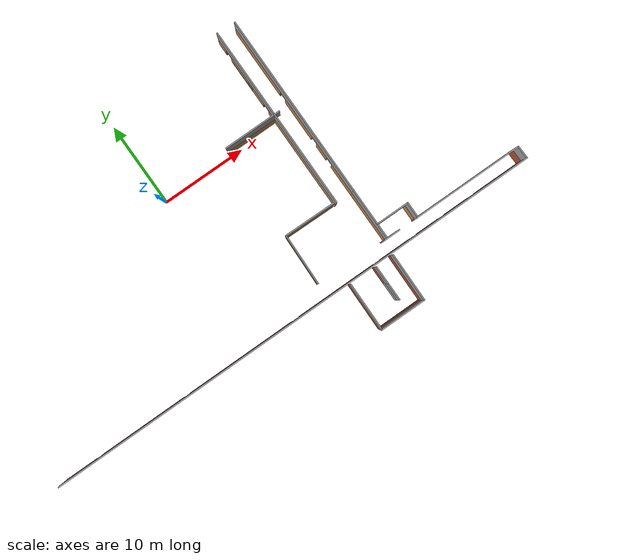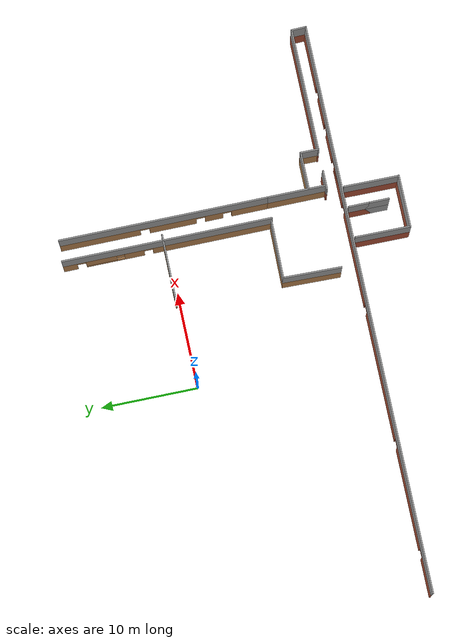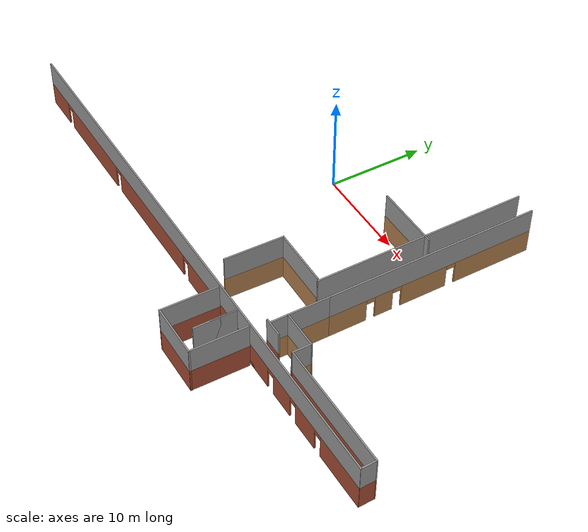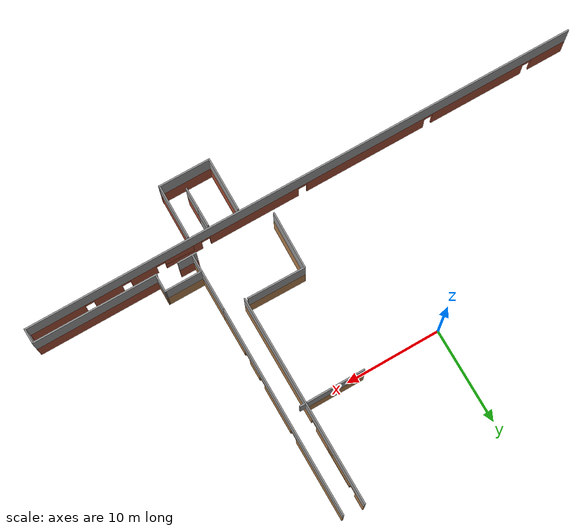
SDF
<sdf version="1.6">
 <model name="FokusFloor2-colour">
  <pose>2.32223 1.2425 0 0 -0 0</pose>
  <link name="Wall_0">
   <pose>1.68206 -19.6458 0 0 -0 0</pose>
   <visual name="Wall_0_Visual_0">
    <pose>-27.675 0 1.25 0 -0 0</pose>
    <geometry><box><size>3.89998 0.15 2.5</size></box></geometry>
    <material>
     <script><uri>file://media/materials/scripts/gazebo.material</uri><name>Gazebo/Bricks</name></script>
     <ambient>1 1 1 1</ambient>
    </material>
    <meta><layer>0</layer></meta>
   </visual>
   <collision name="Wall_0_Collision_0">
    <geometry><box><size>3.89998 0.15 2.5</size></box></geometry>
    <pose>-27.675 0 1.25 0 -0 0</pose>
   </collision>
   <visual name="Wall_0_Visual_1">
    <pose>-19.6116 0 1.25 0 -0 0</pose>
    <geometry><box><size>10.4269 0.15 2.5</size></box></geometry>
    <material>
     <script><uri>file://media/materials/scripts/gazebo.material</uri><name>Gazebo/Bricks</name></script>
     <ambient>1 1 1 1</ambient>
    </material>
    <meta><layer>0</layer></meta>
   </visual>
   <collision name="Wall_0_Collision_1">
    <geometry><box><size>10.4269 0.15 2.5</size></box></geometry>
    <pose>-19.6116 0 1.25 0 -0 0</pose>
   </collision>
   <visual name="Wall_0_Visual_2">
    <pose>-6.88407 0 1.25 0 -0 0</pose>
    <geometry><box><size>13.2282 0.15 2.5</size></box></geometry>
    <material>
     <script><uri>file://media/materials/scripts/gazebo.material</uri><name>Gazebo/Bricks</name></script>
     <ambient>1 1 1 1</ambient>
    </material>
    <meta><layer>0</layer></meta>
   </visual>
   <collision name="Wall_0_Collision_2">
    <geometry><box><size>13.2282 0.15 2.5</size></box></geometry>
    <pose>-6.88407 0 1.25 0 -0 0</pose>
   </collision>
   <visual name="Wall_0_Visual_3">
    <pose>5.50623 0 1.25 0 -0 0</pose>
    <geometry><box><size>9.75238 0.15 2.5</size></box></geometry>
    <material>
     <script><uri>file://media/materials/scripts/gazebo.material</uri><name>Gazebo/Bricks</name></script>
     <ambient>1 1 1 1</ambient>
    </material>
    <meta><layer>0</layer></meta>
   </visual>
   <collision name="Wall_0_Collision_3">
    <geometry><box><size>9.75238 0.15 2.5</size></box></geometry>
    <pose>5.50623 0 1.25 0 -0 0</pose>
   </collision>
   <visual name="Wall_0_Visual_4">
    <pose>13.2652 0 1.25 0 -0 0</pose>
    <geometry><box><size>3.96562 0.15 2.5</size></box></geometry>
    <material>
     <script><uri>file://media/materials/scripts/gazebo.material</uri><name>Gazebo/Bricks</name></script>
     <ambient>1 1 1 1</ambient>
    </material>
    <meta><layer>0</layer></meta>
   </visual>
   <collision name="Wall_0_Collision_4">
    <geometry><box><size>3.96562 0.15 2.5</size></box></geometry>
    <pose>13.2652 0 1.25 0 -0 0</pose>
   </collision>
   <visual name="Wall_0_Visual_5">
    <pose>13.7123 0 1.25 0 -0 0</pose>
    <geometry><box><size>3.0714 0.15 2.5</size></box></geometry>
    <material>
     <script><uri>file://media/materials/scripts/gazebo.material</uri><name>Gazebo/Bricks</name></script>
     <ambient>1 1 1 1</ambient>
    </material>
    <meta><layer>0</layer></meta>
   </visual>
   <collision name="Wall_0_Collision_5">
    <geometry><box><size>3.0714 0.15 2.5</size></box></geometry>
    <pose>13.7123 0 1.25 0 -0 0</pose>
   </collision>
   <visual name="Wall_0_Visual_6">
    <pose>17.5391 0 1.25 0 -0 0</pose>
    <geometry><box><size>2.78209 0.15 2.5</size></box></geometry>
    <material>
     <script><uri>file://media/materials/scripts/gazebo.material</uri><name>Gazebo/Bricks</name></script>
     <ambient>1 1 1 1</ambient>
    </material>
    <meta><layer>0</layer></meta>
   </visual>
   <collision name="Wall_0_Collision_6">
    <geometry><box><size>2.78209 0.15 2.5</size></box></geometry>
    <pose>17.5391 0 1.25 0 -0 0</pose>
   </collision>
   <visual name="Wall_0_Visual_7">
    <pose>21.3527 0 1.25 0 -0 0</pose>
    <geometry><box><size>3.0451 0.15 2.5</size></box></geometry>
    <material>
     <script><uri>file://media/materials/scripts/gazebo.material</uri><name>Gazebo/Bricks</name></script>
     <ambient>1 1 1 1</ambient>
    </material>
    <meta><layer>0</layer></meta>
   </visual>
   <collision name="Wall_0_Collision_7">
    <geometry><box><size>3.0451 0.15 2.5</size></box></geometry>
    <pose>21.3527 0 1.25 0 -0 0</pose>
   </collision>
   <visual name="Wall_0_Visual_8">
    <pose>26.7001 0 1.25 0 -0 0</pose>
    <geometry><box><size>5.84977 0.15 2.5</size></box></geometry>
    <material>
     <script><uri>file://media/materials/scripts/gazebo.material</uri><name>Gazebo/Bricks</name></script>
     <ambient>1 1 1 1</ambient>
    </material>
    <meta><layer>0</layer></meta>
   </visual>
   <collision name="Wall_0_Collision_8">
    <geometry><box><size>5.84977 0.15 2.5</size></box></geometry>
    <pose>26.7001 0 1.25 0 -0 0</pose>
   </collision>
   <visual name="Wall_0_Visual_9">
    <pose>-25.275 0 2.25 0 -0 0</pose>
    <geometry><box><size>0.9 0.15 0.5</size></box></geometry>
    <material>
     <script><uri>file://media/materials/scripts/gazebo.material</uri><name>Gazebo/Bricks</name></script>
     <ambient>1 1 1 1</ambient>
    </material>
    <meta><layer>0</layer></meta>
   </visual>
   <collision name="Wall_0_Collision_9">
    <geometry><box><size>0.9 0.15 0.5</size></box></geometry>
    <pose>-25.275 0 2.25 0 -0 0</pose>
   </collision>
   <visual name="Wall_0_Visual_10">
    <pose>-13.9482 0 2.25 0 -0 0</pose>
    <geometry><box><size>0.9 0.15 0.5</size></box></geometry>
    <material>
     <script><uri>file://media/materials/scripts/gazebo.material</uri><name>Gazebo/Bricks</name></script>
     <ambient>1 1 1 1</ambient>
    </material>
    <meta><layer>0</layer></meta>
   </visual>
   <collision name="Wall_0_Collision_10">
    <geometry><box><size>0.9 0.15 0.5</size></box></geometry>
    <pose>-13.9482 0 2.25 0 -0 0</pose>
   </collision>
   <visual name="Wall_0_Visual_11">
    <pose>0.180036 0 2.25 0 -0 0</pose>
    <geometry><box><size>0.9 0.15 0.5</size></box></geometry>
    <material>
     <script><uri>file://media/materials/scripts/gazebo.material</uri><name>Gazebo/Bricks</name></script>
     <ambient>1 1 1 1</ambient>
    </material>
    <meta><layer>0</layer></meta>
   </visual>
   <collision name="Wall_0_Collision_11">
    <geometry><box><size>0.9 0.15 0.5</size></box></geometry>
    <pose>0.180036 0 2.25 0 -0 0</pose>
   </collision>
   <visual name="Wall_0_Visual_12">
    <pose>10.8295 0 2.25 0 -0 0</pose>
    <geometry><box><size>0.894221 0.15 0.5</size></box></geometry>
    <material>
     <script><uri>file://media/materials/scripts/gazebo.material</uri><name>Gazebo/Bricks</name></script>
     <ambient>1 1 1 1</ambient>
    </material>
    <meta><layer>0</layer></meta>
   </visual>
   <collision name="Wall_0_Collision_12">
    <geometry><box><size>0.894221 0.15 0.5</size></box></geometry>
    <pose>10.8295 0 2.25 0 -0 0</pose>
   </collision>
   <visual name="Wall_0_Visual_13">
    <pose>15.698 0 2.25 0 -0 0</pose>
    <geometry><box><size>0.9 0.15 0.5</size></box></geometry>
    <material>
     <script><uri>file://media/materials/scripts/gazebo.material</uri><name>Gazebo/Bricks</name></script>
     <ambient>1 1 1 1</ambient>
    </material>
    <meta><layer>0</layer></meta>
   </visual>
   <collision name="Wall_0_Collision_13">
    <geometry><box><size>0.9 0.15 0.5</size></box></geometry>
    <pose>15.698 0 2.25 0 -0 0</pose>
   </collision>
   <visual name="Wall_0_Visual_14">
    <pose>15.698 0 2.25 0 -0 0</pose>
    <geometry><box><size>0.9 0.15 0.5</size></box></geometry>
    <material>
     <script><uri>file://media/materials/scripts/gazebo.material</uri><name>Gazebo/Bricks</name></script>
     <ambient>1 1 1 1</ambient>
    </material>
    <meta><layer>0</layer></meta>
   </visual>
   <collision name="Wall_0_Collision_14">
    <geometry><box><size>0.9 0.15 0.5</size></box></geometry>
    <pose>15.698 0 2.25 0 -0 0</pose>
   </collision>
   <visual name="Wall_0_Visual_15">
    <pose>19.3801 0 2.25 0 -0 0</pose>
    <geometry><box><size>0.9 0.15 0.5</size></box></geometry>
    <material>
     <script><uri>file://media/materials/scripts/gazebo.material</uri><name>Gazebo/Bricks</name></script>
     <ambient>1 1 1 1</ambient>
    </material>
    <meta><layer>0</layer></meta>
   </visual>
   <collision name="Wall_0_Collision_15">
    <geometry><box><size>0.9 0.15 0.5</size></box></geometry>
    <pose>19.3801 0 2.25 0 -0 0</pose>
   </collision>
   <visual name="Wall_0_Visual_16">
    <pose>23.3252 0 2.25 0 -0 0</pose>
    <geometry><box><size>0.9 0.15 0.5</size></box></geometry>
    <material>
     <script><uri>file://media/materials/scripts/gazebo.material</uri><name>Gazebo/Bricks</name></script>
     <ambient>1 1 1 1</ambient>
    </material>
    <meta><layer>0</layer></meta>
   </visual>
   <collision name="Wall_0_Collision_16">
    <geometry><box><size>0.9 0.15 0.5</size></box></geometry>
    <pose>23.3252 0 2.25 0 -0 0</pose>
   </collision>
  </link>
  <link name="Wall_1">
   <collision name="Wall_1_Collision">
    <geometry><box><size>1.57844 0.15 2.5</size></box></geometry>
    <pose>0 0 1.25 0 -0 0</pose>
   </collision>
   <visual name="Wall_1_Visual">
    <pose>0 0 1.25 0 -0 0</pose>
    <geometry><box><size>1.57844 0.15 2.5</size></box></geometry>
    <material>
     <script><uri>file://media/materials/scripts/gazebo.material</uri><name>Gazebo/Bricks</name></script>
     <ambient>1 1 1 1</ambient>
    </material>
    <meta><layer>0</layer></meta>
   </visual>
   <pose>31.2278 -18.9169 0 0 -0 1.59774</pose>
  </link>
  <link name="Wall_107">
   <collision name="Wall_107_Collision">
    <geometry><box><size>5.78955 0.15 2.5</size></box></geometry>
    <pose>0 0 1.25 0 -0 0</pose>
   </collision>
   <visual name="Wall_107_Visual">
    <pose>0 0 1.25 0 -0 0</pose>
    <geometry><box><size>5.78955 0.15 2.5</size></box></geometry>
    <material>
     <script><uri>file://media/materials/scripts/gazebo.material</uri><name>Gazebo/Grey</name></script>
     <ambient>1 1 1 1</ambient>
    </material>
    <meta><layer>1</layer></meta>
   </visual>
   <pose>8.65963 -22.734 2.5 0 -0 -1.58012</pose>
  </link>
  <link name="Wall_108">
   <collision name="Wall_108_Collision">
    <geometry><box><size>5.5 0.15 2.5</size></box></geometry>
    <pose>0 0 1.25 0 -0 0</pose>
   </collision>
   <visual name="Wall_108_Visual">
    <pose>0 0 1.25 0 -0 0</pose>
    <geometry><box><size>5.5 0.15 2.5</size></box></geometry>
    <material>
     <script><uri>file://media/materials/scripts/gazebo.material</uri><name>Gazebo/Grey</name></script>
     <ambient>1 1 1 1</ambient>
    </material>
    <meta><layer>1</layer></meta>
   </visual>
   <pose>11.3346 -25.5537 2.5 0 -0 0</pose>
  </link>
  <link name="Wall_109">
   <collision name="Wall_109_Collision">
    <geometry><box><size>5.78955 0.15 2.5</size></box></geometry>
    <pose>0 0 1.25 0 -0 0</pose>
   </collision>
   <visual name="Wall_109_Visual">
    <pose>0 0 1.25 0 -0 0</pose>
    <geometry><box><size>5.78955 0.15 2.5</size></box></geometry>
    <material>
     <script><uri>file://media/materials/scripts/gazebo.material</uri><name>Gazebo/Grey</name></script>
     <ambient>1 1 1 1</ambient>
    </material>
    <meta><layer>1</layer></meta>
   </visual>
   <pose>14.0096 -22.734 2.5 0 -0 1.56147</pose>
  </link>
  <link name="Wall_110">
   <collision name="Wall_110_Collision">
    <geometry><box><size>4.25 0.15 2.5</size></box></geometry>
    <pose>0 0 1.25 0 -0 0</pose>
   </collision>
   <visual name="Wall_110_Visual">
    <pose>0 0 1.25 0 -0 0</pose>
    <geometry><box><size>4.25 0.15 2.5</size></box></geometry>
    <material>
     <script><uri>file://media/materials/scripts/gazebo.material</uri><name>Gazebo/Grey</name></script>
     <ambient>1 1 1 1</ambient>
    </material>
    <meta><layer>1</layer></meta>
   </visual>
   <pose>11.8946 -21.9906 2.5 0 -0 -1.5708</pose>
  </link>
  <link name="Wall_111">
   <collision name="Wall_111_Collision">
    <geometry><box><size>4.25 0.15 2.5</size></box></geometry>
    <pose>0 0 1.25 0 -0 0</pose>
   </collision>
   <visual name="Wall_111_Visual">
    <pose>0 0 1.25 0 -0 0</pose>
    <geometry><box><size>4.25 0.15 2.5</size></box></geometry>
    <material>
     <script><uri>file://media/materials/scripts/gazebo.material</uri><name>Gazebo/Grey</name></script>
     <ambient>1 1 1 1</ambient>
    </material>
    <meta><layer>1</layer></meta>
   </visual>
   <pose>11.8946 -21.9906 2.5 0 -0 1.5708</pose>
  </link>
  <link name="Wall_112">
   <collision name="Wall_112_Collision">
    <geometry><box><size>4.25 0.15 2.5</size></box></geometry>
    <pose>0 0 1.25 0 -0 0</pose>
   </collision>
   <visual name="Wall_112_Visual">
    <pose>0 0 1.25 0 -0 0</pose>
    <geometry><box><size>4.25 0.15 2.5</size></box></geometry>
    <material>
     <script><uri>file://media/materials/scripts/gazebo.material</uri><name>Gazebo/Grey</name></script>
     <ambient>1 1 1 1</ambient>
    </material>
    <meta><layer>1</layer></meta>
   </visual>
   <pose>11.8946 -21.9906 2.5 0 -0 -1.5708</pose>
  </link>
  <link name="Wall_12">
   <pose>12.3938 -1.23534 0 0 -0 1.5708</pose>
   <visual name="Wall_12_Visual_0">
    <pose>-4.66098 0 1.25 0 -0 0</pose>
    <geometry><box><size>12.428 0.15 2.5</size></box></geometry>
    <material>
     <script><uri>file://media/materials/scripts/gazebo.material</uri><name>Gazebo/Wood</name></script>
     <ambient>1 1 1 1</ambient>
    </material>
    <meta><layer>0</layer></meta>
   </visual>
   <collision name="Wall_12_Collision_0">
    <geometry><box><size>12.428 0.15 2.5</size></box></geometry>
    <pose>-4.66098 0 1.25 0 -0 0</pose>
   </collision>
   <visual name="Wall_12_Visual_1">
    <pose>3.48748 0 1.25 0 -0 0</pose>
    <geometry><box><size>2.06889 0.15 2.5</size></box></geometry>
    <material>
     <script><uri>file://media/materials/scripts/gazebo.material</uri><name>Gazebo/Wood</name></script>
     <ambient>1 1 1 1</ambient>
    </material>
    <meta><layer>0</layer></meta>
   </visual>
   <collision name="Wall_12_Collision_1">
    <geometry><box><size>2.06889 0.15 2.5</size></box></geometry>
    <pose>3.48748 0 1.25 0 -0 0</pose>
   </collision>
   <visual name="Wall_12_Visual_2">
    <pose>10.1428 0 1.25 0 -0 0</pose>
    <geometry><box><size>1.4645 0.15 2.5</size></box></geometry>
    <material>
     <script><uri>file://media/materials/scripts/gazebo.material</uri><name>Gazebo/Wood</name></script>
     <ambient>1 1 1 1</ambient>
    </material>
    <meta><layer>0</layer></meta>
   </visual>
   <collision name="Wall_12_Collision_2">
    <geometry><box><size>1.4645 0.15 2.5</size></box></geometry>
    <pose>10.1428 0 1.25 0 -0 0</pose>
   </collision>
   <visual name="Wall_12_Visual_3">
    <pose>6.51621 0 0.25 0 -0 0</pose>
    <geometry><box><size>3.98858 0.15 0.5</size></box></geometry>
    <material>
     <script><uri>file://media/materials/scripts/gazebo.material</uri><name>Gazebo/Wood</name></script>
     <ambient>1 1 1 1</ambient>
    </material>
    <meta><layer>0</layer></meta>
   </visual>
   <collision name="Wall_12_Collision_3">
    <geometry><box><size>3.98858 0.15 0.5</size></box></geometry>
    <pose>6.51621 0 0.25 0 -0 0</pose>
   </collision>
   <visual name="Wall_12_Visual_4">
    <pose>6.91621 0 1.5 0 -0 0</pose>
    <geometry><box><size>3.18858 0.15 2</size></box></geometry>
    <material>
     <script><uri>file://media/materials/scripts/gazebo.material</uri><name>Gazebo/Wood</name></script>
     <ambient>1 1 1 1</ambient>
    </material>
    <meta><layer>0</layer></meta>
   </visual>
   <collision name="Wall_12_Collision_4">
    <geometry><box><size>3.18858 0.15 2</size></box></geometry>
    <pose>6.91621 0 1.5 0 -0 0</pose>
   </collision>
   <visual name="Wall_12_Visual_5">
    <pose>4.92192 0 1.9 0 -0 0</pose>
    <geometry><box><size>0.8 0.15 1.2</size></box></geometry>
    <material>
     <script><uri>file://media/materials/scripts/gazebo.material</uri><name>Gazebo/Wood</name></script>
     <ambient>1 1 1 1</ambient>
    </material>
    <meta><layer>0</layer></meta>
   </visual>
   <collision name="Wall_12_Collision_5">
    <geometry><box><size>0.8 0.15 1.2</size></box></geometry>
    <pose>4.92192 0 1.9 0 -0 0</pose>
   </collision>
   <visual name="Wall_12_Visual_6">
    <pose>2.00304 0 2.25 0 -0 0</pose>
    <geometry><box><size>0.9 0.15 0.5</size></box></geometry>
    <material>
     <script><uri>file://media/materials/scripts/gazebo.material</uri><name>Gazebo/Wood</name></script>
     <ambient>1 1 1 1</ambient>
    </material>
    <meta><layer>0</layer></meta>
   </visual>
   <collision name="Wall_12_Collision_6">
    <geometry><box><size>0.9 0.15 0.5</size></box></geometry>
    <pose>2.00304 0 2.25 0 -0 0</pose>
   </collision>
   <visual name="Wall_12_Visual_7">
    <pose>8.9605 0 2.25 0 -0 0</pose>
    <geometry><box><size>0.9 0.15 0.5</size></box></geometry>
    <material>
     <script><uri>file://media/materials/scripts/gazebo.material</uri><name>Gazebo/Wood</name></script>
     <ambient>1 1 1 1</ambient>
    </material>
    <meta><layer>0</layer></meta>
   </visual>
   <collision name="Wall_12_Collision_7">
    <geometry><box><size>0.9 0.15 0.5</size></box></geometry>
    <pose>8.9605 0 2.25 0 -0 0</pose>
   </collision>
  </link>
  <link name="Wall_120">
   <collision name="Wall_120_Collision">
    <geometry><box><size>0.75 0.15 2.5</size></box></geometry>
    <pose>0 0 1.25 0 -0 0</pose>
   </collision>
   <visual name="Wall_120_Visual">
    <pose>0 0 1.25 0 -0 0</pose>
    <geometry><box><size>0.75 0.15 2.5</size></box></geometry>
    <material>
     <script><uri>file://media/materials/scripts/gazebo.material</uri><name>Gazebo/Grey</name></script>
     <ambient>1 1 1 1</ambient>
    </material>
    <meta><layer>1</layer></meta>
   </visual>
   <pose>12.6731 -0.842177 2.5 0 -0 0</pose>
  </link>
  <link name="Wall_121">
   <collision name="Wall_121_Collision">
    <geometry><box><size>6.25 0.15 2.5</size></box></geometry>
    <pose>0 0 1.25 0 -0 0</pose>
   </collision>
   <visual name="Wall_121_Visual">
    <pose>0 0 1.25 0 -0 0</pose>
    <geometry><box><size>6.25 0.15 2.5</size></box></geometry>
    <material>
     <script><uri>file://media/materials/scripts/gazebo.material</uri><name>Gazebo/Grey</name></script>
     <ambient>1 1 1 1</ambient>
    </material>
    <meta><layer>1</layer></meta>
   </visual>
   <pose>9.32312 -0.842177 2.5 0 -0 3.14159</pose>
  </link>
  <link name="Wall_18">
   <pose>14.556 -1.34338 0 0 -0 1.5708</pose>
   <visual name="Wall_18_Visual_0">
    <pose>-8.92513 0 1.25 0 -0 0</pose>
    <geometry><box><size>3.89973 0.15 2.5</size></box></geometry>
    <material>
     <script><uri>file://media/materials/scripts/gazebo.material</uri><name>Gazebo/Wood</name></script>
     <ambient>1 1 1 1</ambient>
    </material>
    <meta><layer>0</layer></meta>
   </visual>
   <collision name="Wall_18_Collision_0">
    <geometry><box><size>3.89973 0.15 2.5</size></box></geometry>
    <pose>-8.92513 0 1.25 0 -0 0</pose>
   </collision>
   <visual name="Wall_18_Visual_1">
    <pose>-5.14449 0 1.25 0 -0 0</pose>
    <geometry><box><size>1.86157 0.15 2.5</size></box></geometry>
    <material>
     <script><uri>file://media/materials/scripts/gazebo.material</uri><name>Gazebo/Wood</name></script>
     <ambient>1 1 1 1</ambient>
    </material>
    <meta><layer>0</layer></meta>
   </visual>
   <collision name="Wall_18_Collision_1">
    <geometry><box><size>1.86157 0.15 2.5</size></box></geometry>
    <pose>-5.14449 0 1.25 0 -0 0</pose>
   </collision>
   <visual name="Wall_18_Visual_2">
    <pose>-0.867705 0 1.25 0 -0 0</pose>
    <geometry><box><size>4.89199 0.15 2.5</size></box></geometry>
    <material>
     <script><uri>file://media/materials/scripts/gazebo.material</uri><name>Gazebo/Wood</name></script>
     <ambient>1 1 1 1</ambient>
    </material>
    <meta><layer>0</layer></meta>
   </visual>
   <collision name="Wall_18_Collision_2">
    <geometry><box><size>4.89199 0.15 2.5</size></box></geometry>
    <pose>-0.867705 0 1.25 0 -0 0</pose>
   </collision>
   <visual name="Wall_18_Visual_3">
    <pose>6.699 0 1.25 0 -0 0</pose>
    <geometry><box><size>8.352 0.15 2.5</size></box></geometry>
    <material>
     <script><uri>file://media/materials/scripts/gazebo.material</uri><name>Gazebo/Wood</name></script>
     <ambient>1 1 1 1</ambient>
    </material>
    <meta><layer>0</layer></meta>
   </visual>
   <collision name="Wall_18_Collision_3">
    <geometry><box><size>8.352 0.15 2.5</size></box></geometry>
    <pose>6.699 0 1.25 0 -0 0</pose>
   </collision>
   <visual name="Wall_18_Visual_4">
    <pose>-6.52527 0 2.25 0 -0 0</pose>
    <geometry><box><size>0.9 0.15 0.5</size></box></geometry>
    <material>
     <script><uri>file://media/materials/scripts/gazebo.material</uri><name>Gazebo/Wood</name></script>
     <ambient>1 1 1 1</ambient>
    </material>
    <meta><layer>0</layer></meta>
   </visual>
   <collision name="Wall_18_Collision_4">
    <geometry><box><size>0.9 0.15 0.5</size></box></geometry>
    <pose>-6.52527 0 2.25 0 -0 0</pose>
   </collision>
   <visual name="Wall_18_Visual_5">
    <pose>-3.7637 0 2.25 0 -0 0</pose>
    <geometry><box><size>0.9 0.15 0.5</size></box></geometry>
    <material>
     <script><uri>file://media/materials/scripts/gazebo.material</uri><name>Gazebo/Wood</name></script>
     <ambient>1 1 1 1</ambient>
    </material>
    <meta><layer>0</layer></meta>
   </visual>
   <collision name="Wall_18_Collision_5">
    <geometry><box><size>0.9 0.15 0.5</size></box></geometry>
    <pose>-3.7637 0 2.25 0 -0 0</pose>
   </collision>
   <visual name="Wall_18_Visual_6">
    <pose>2.05064 0 2.25 0 -0 0</pose>
    <geometry><box><size>0.944708 0.15 0.5</size></box></geometry>
    <material>
     <script><uri>file://media/materials/scripts/gazebo.material</uri><name>Gazebo/Wood</name></script>
     <ambient>1 1 1 1</ambient>
    </material>
    <meta><layer>0</layer></meta>
   </visual>
   <collision name="Wall_18_Collision_6">
    <geometry><box><size>0.944708 0.15 0.5</size></box></geometry>
    <pose>2.05064 0 2.25 0 -0 0</pose>
   </collision>
  </link>
  <link name="Wall_2">
   <collision name="Wall_2_Collision">
    <geometry><box><size>13.016 0.15 2.5</size></box></geometry>
    <pose>0 0 1.25 0 -0 0</pose>
   </collision>
   <visual name="Wall_2_Visual">
    <pose>0 0 1.25 0 -0 0</pose>
    <geometry><box><size>13.016 0.15 2.5</size></box></geometry>
    <material>
     <script><uri>file://media/materials/scripts/gazebo.material</uri><name>Gazebo/Bricks</name></script>
     <ambient>1 1 1 1</ambient>
    </material>
    <meta><layer>0</layer></meta>
   </visual>
   <pose>24.7755 -18.1627 0 0 -0 3.14159</pose>
  </link>
  <link name="Wall_20">
   <collision name="Wall_20_Collision">
    <geometry><box><size>6 0.15 2.5</size></box></geometry>
    <pose>0 0 1.25 0 -0 0</pose>
   </collision>
   <visual name="Wall_20_Visual">
    <pose>0 0 1.25 0 -0 0</pose>
    <geometry><box><size>6 0.15 2.5</size></box></geometry>
    <material>
     <script><uri>file://media/materials/scripts/gazebo.material</uri><name>Gazebo/Wood</name></script>
     <ambient>1 1 1 1</ambient>
    </material>
    <meta><layer>0</layer></meta>
   </visual>
   <pose>14.556 -15.0684 0 0 -0 -1.5708</pose>
  </link>
  <link name="Wall_22">
   <collision name="Wall_22_Collision">
    <geometry><box><size>4 0.15 2.5</size></box></geometry>
    <pose>0 0 1.25 0 -0 0</pose>
   </collision>
   <visual name="Wall_22_Visual">
    <pose>0 0 1.25 0 -0 0</pose>
    <geometry><box><size>4 0.15 2.5</size></box></geometry>
    <material>
     <script><uri>file://media/materials/scripts/gazebo.material</uri><name>Gazebo/Wood</name></script>
     <ambient>1 1 1 1</ambient>
    </material>
    <meta><layer>0</layer></meta>
   </visual>
   <pose>16.481 -16.3462 0 0 -0 0</pose>
  </link>
  <link name="Wall_23">
   <collision name="Wall_23_Collision">
    <geometry><box><size>1.96656 0.15 2.5</size></box></geometry>
    <pose>0 0 1.25 0 -0 0</pose>
   </collision>
   <visual name="Wall_23_Visual">
    <pose>0 0 1.25 0 -0 0</pose>
    <geometry><box><size>1.96656 0.15 2.5</size></box></geometry>
    <material>
     <script><uri>file://media/materials/scripts/gazebo.material</uri><name>Gazebo/Wood</name></script>
     <ambient>1 1 1 1</ambient>
    </material>
    <meta><layer>0</layer></meta>
   </visual>
   <pose>18.4008 -17.2545 0 0 -0 -1.57644</pose>
  </link>
  <link name="Wall_4">
   <collision name="Wall_4_Collision">
    <geometry><box><size>2 0.15 2.5</size></box></geometry>
    <pose>0 0 1.25 0 -0 0</pose>
   </collision>
   <visual name="Wall_4_Visual">
    <pose>0 0 1.25 0 -0 0</pose>
    <geometry><box><size>2 0.15 2.5</size></box></geometry>
    <material>
     <script><uri>file://media/materials/scripts/gazebo.material</uri><name>Gazebo/Bricks</name></script>
     <ambient>1 1 1 1</ambient>
    </material>
    <meta><layer>0</layer></meta>
   </visual>
   <pose>15.1282 -18.1517 0 0 -0 0</pose>
  </link>
  <link name="Wall_43">
   <collision name="Wall_43_Collision">
    <geometry><box><size>5.78955 0.15 2.5</size></box></geometry>
    <pose>0 0 1.25 0 -0 0</pose>
   </collision>
   <visual name="Wall_43_Visual">
    <pose>0 0 1.25 0 -0 0</pose>
    <geometry><box><size>5.78955 0.15 2.5</size></box></geometry>
    <material>
     <script><uri>file://media/materials/scripts/gazebo.material</uri><name>Gazebo/Bricks</name></script>
     <ambient>1 1 1 1</ambient>
    </material>
    <meta><layer>0</layer></meta>
   </visual>
   <pose>8.65963 -22.734 0 0 -0 -1.58012</pose>
  </link>
  <link name="Wall_44">
   <collision name="Wall_44_Collision">
    <geometry><box><size>5.5 0.15 2.5</size></box></geometry>
    <pose>0 0 1.25 0 -0 0</pose>
   </collision>
   <visual name="Wall_44_Visual">
    <pose>0 0 1.25 0 -0 0</pose>
    <geometry><box><size>5.5 0.15 2.5</size></box></geometry>
    <material>
     <script><uri>file://media/materials/scripts/gazebo.material</uri><name>Gazebo/Bricks</name></script>
     <ambient>1 1 1 1</ambient>
    </material>
    <meta><layer>0</layer></meta>
   </visual>
   <pose>11.3346 -25.5537 0 0 -0 0</pose>
  </link>
  <link name="Wall_45">
   <collision name="Wall_45_Collision">
    <geometry><box><size>5.78955 0.15 2.5</size></box></geometry>
    <pose>0 0 1.25 0 -0 0</pose>
   </collision>
   <visual name="Wall_45_Visual">
    <pose>0 0 1.25 0 -0 0</pose>
    <geometry><box><size>5.78955 0.15 2.5</size></box></geometry>
    <material>
     <script><uri>file://media/materials/scripts/gazebo.material</uri><name>Gazebo/Bricks</name></script>
     <ambient>1 1 1 1</ambient>
    </material>
    <meta><layer>0</layer></meta>
   </visual>
   <pose>14.0096 -22.734 0 0 -0 1.56147</pose>
  </link>
  <link name="Wall_47">
   <collision name="Wall_47_Collision">
    <geometry><box><size>4.25 0.15 2.5</size></box></geometry>
    <pose>0 0 1.25 0 -0 0</pose>
   </collision>
   <visual name="Wall_47_Visual">
    <pose>0 0 1.25 0 -0 0</pose>
    <geometry><box><size>4.25 0.15 2.5</size></box></geometry>
    <material>
     <script><uri>file://media/materials/scripts/gazebo.material</uri><name>Gazebo/Grey</name></script>
     <ambient>1 1 1 1</ambient>
    </material>
    <meta><layer>0</layer></meta>
   </visual>
   <pose>11.8946 -21.9906 0 0 -0 -1.5708</pose>
  </link>
  <link name="Wall_48">
   <collision name="Wall_48_Collision">
    <geometry><box><size>4.25 0.15 2.5</size></box></geometry>
    <pose>0 0 1.25 0 -0 0</pose>
   </collision>
   <visual name="Wall_48_Visual">
    <pose>0 0 1.25 0 -0 0</pose>
    <geometry><box><size>4.25 0.15 2.5</size></box></geometry>
    <material>
     <script><uri>file://media/materials/scripts/gazebo.material</uri><name>Gazebo/Bricks</name></script>
     <ambient>1 1 1 1</ambient>
    </material>
    <meta><layer>0</layer></meta>
   </visual>
   <pose>11.8946 -21.9906 0 0 -0 1.5708</pose>
  </link>
  <link name="Wall_49">
   <collision name="Wall_49_Collision">
    <geometry><box><size>4.25 0.15 2.5</size></box></geometry>
    <pose>0 0 1.25 0 -0 0</pose>
   </collision>
   <visual name="Wall_49_Visual">
    <pose>0 0 1.25 0 -0 0</pose>
    <geometry><box><size>4.25 0.15 2.5</size></box></geometry>
    <material>
     <script><uri>file://media/materials/scripts/gazebo.material</uri><name>Gazebo/Bricks</name></script>
     <ambient>1 1 1 1</ambient>
    </material>
    <meta><layer>0</layer></meta>
   </visual>
   <pose>11.8946 -21.9906 0 0 -0 -1.5708</pose>
  </link>
  <link name="Wall_68">
   <collision name="Wall_68_Collision">
    <geometry><box><size>6.25 0.15 2.5</size></box></geometry>
    <pose>0 0 1.25 0 -0 0</pose>
   </collision>
   <visual name="Wall_68_Visual">
    <pose>0 0 1.25 0 -0 0</pose>
    <geometry><box><size>6.25 0.15 2.5</size></box></geometry>
    <material>
     <script><uri>file://media/materials/scripts/gazebo.material</uri><name>Gazebo/Wood</name></script>
     <ambient>1 1 1 1</ambient>
    </material>
    <meta><layer>0</layer></meta>
   </visual>
   <pose>9.32313 -0.842177 0 0 -0 3.14159</pose>
  </link>
  <link name="Wall_7">
   <collision name="Wall_7_Collision">
    <geometry><box><size>6.0985 0.15 2.5</size></box></geometry>
    <pose>0 0 1.25 0 -0 0</pose>
   </collision>
   <visual name="Wall_7_Visual">
    <pose>0 0 1.25 0 -0 0</pose>
    <geometry><box><size>6.0985 0.15 2.5</size></box></geometry>
    <material>
     <script><uri>file://media/materials/scripts/gazebo.material</uri><name>Gazebo/Wood</name></script>
     <ambient>1 1 1 1</ambient>
    </material>
    <meta><layer>0</layer></meta>
   </visual>
   <pose>6.04355 -14.8521 0 0 -0 1.54582</pose>
  </link>
  <link name="Wall_8">
   <collision name="Wall_8_Collision">
    <geometry><box><size>6.06948 0.15 2.5</size></box></geometry>
    <pose>0 0 1.25 0 -0 0</pose>
   </collision>
   <visual name="Wall_8_Visual">
    <pose>0 0 1.25 0 -0 0</pose>
    <geometry><box><size>6.06948 0.15 2.5</size></box></geometry>
    <material>
     <script><uri>file://media/materials/scripts/gazebo.material</uri><name>Gazebo/Wood</name></script>
     <ambient>1 1 1 1</ambient>
    </material>
    <meta><layer>0</layer></meta>
   </visual>
   <pose>9.11757 -11.9143 0 0 -0 -0.011886</pose>
  </link>
  <link name="Wall_80">
   <collision name="Wall_80_Collision">
    <geometry><box><size>59.25 0.15 2.5</size></box></geometry>
    <pose>0 0 1.25 0 -0 0</pose>
   </collision>
   <visual name="Wall_80_Visual">
    <pose>0 0 1.25 0 -0 0</pose>
    <geometry><box><size>59.25 0.15 2.5</size></box></geometry>
    <material>
     <script><uri>file://media/materials/scripts/gazebo.material</uri><name>Gazebo/Grey</name></script>
     <ambient>1 1 1 1</ambient>
    </material>
    <meta><layer>1</layer></meta>
   </visual>
   <pose>1.68206 -19.6458 2.5 0 -0 0</pose>
  </link>
  <link name="Wall_81">
   <collision name="Wall_81_Collision">
    <geometry><box><size>1.57844 0.15 2.5</size></box></geometry>
    <pose>0 0 1.25 0 -0 0</pose>
   </collision>
   <visual name="Wall_81_Visual">
    <pose>0 0 1.25 0 -0 0</pose>
    <geometry><box><size>1.57844 0.15 2.5</size></box></geometry>
    <material>
     <script><uri>file://media/materials/scripts/gazebo.material</uri><name>Gazebo/Grey</name></script>
     <ambient>1 1 1 1</ambient>
    </material>
    <meta><layer>1</layer></meta>
   </visual>
   <pose>31.2278 -18.9169 2.5 0 -0 1.59774</pose>
  </link>
  <link name="Wall_82">
   <collision name="Wall_82_Collision">
    <geometry><box><size>13.016 0.15 2.5</size></box></geometry>
    <pose>0 0 1.25 0 -0 0</pose>
   </collision>
   <visual name="Wall_82_Visual">
    <pose>0 0 1.25 0 -0 0</pose>
    <geometry><box><size>13.016 0.15 2.5</size></box></geometry>
    <material>
     <script><uri>file://media/materials/scripts/gazebo.material</uri><name>Gazebo/Grey</name></script>
     <ambient>1 1 1 1</ambient>
    </material>
    <meta><layer>1</layer></meta>
   </visual>
   <pose>24.7755 -18.1627 2.5 0 -0 3.14159</pose>
  </link>
  <link name="Wall_83">
   <collision name="Wall_83_Collision">
    <geometry><box><size>2 0.15 2.5</size></box></geometry>
    <pose>0 0 1.25 0 -0 0</pose>
   </collision>
   <visual name="Wall_83_Visual">
    <pose>0 0 1.25 0 -0 0</pose>
    <geometry><box><size>2 0.15 2.5</size></box></geometry>
    <material>
     <script><uri>file://media/materials/scripts/gazebo.material</uri><name>Gazebo/Grey</name></script>
     <ambient>1 1 1 1</ambient>
    </material>
    <meta><layer>1</layer></meta>
   </visual>
   <pose>15.1282 -18.1517 2.5 0 -0 0</pose>
  </link>
  <link name="Wall_85">
   <collision name="Wall_85_Collision">
    <geometry><box><size>6.09779 0.15 2.5</size></box></geometry>
    <pose>0 0 1.25 0 -0 0</pose>
   </collision>
   <visual name="Wall_85_Visual">
    <pose>0 0 1.25 0 -0 0</pose>
    <geometry><box><size>6.09779 0.15 2.5</size></box></geometry>
    <material>
     <script><uri>file://media/materials/scripts/gazebo.material</uri><name>Gazebo/Grey</name></script>
     <ambient>1 1 1 1</ambient>
    </material>
    <meta><layer>1</layer></meta>
   </visual>
   <pose>6.04355 -14.8521 2.5 0 -0 1.54582</pose>
  </link>
  <link name="Wall_86">
   <collision name="Wall_86_Collision">
    <geometry><box><size>6.06948 0.15 2.5</size></box></geometry>
    <pose>0 0 1.25 0 -0 0</pose>
   </collision>
   <visual name="Wall_86_Visual">
    <pose>0 0 1.25 0 -0 0</pose>
    <geometry><box><size>6.06948 0.15 2.5</size></box></geometry>
    <material>
     <script><uri>file://media/materials/scripts/gazebo.material</uri><name>Gazebo/Grey</name></script>
     <ambient>1 1 1 1</ambient>
    </material>
    <meta><layer>1</layer></meta>
   </visual>
   <pose>9.11758 -11.9143 2.5 0 -0 -0.011886</pose>
  </link>
  <link name="Wall_88">
   <collision name="Wall_88_Collision">
    <geometry><box><size>21.75 0.15 2.5</size></box></geometry>
    <pose>0 0 1.25 0 -0 0</pose>
   </collision>
   <visual name="Wall_88_Visual">
    <pose>0 0 1.25 0 -0 0</pose>
    <geometry><box><size>21.75 0.15 2.5</size></box></geometry>
    <material>
     <script><uri>file://media/materials/scripts/gazebo.material</uri><name>Gazebo/Grey</name></script>
     <ambient>1 1 1 1</ambient>
    </material>
    <meta><layer>1</layer></meta>
   </visual>
   <pose>12.3938 -1.23534 2.5 0 -0 1.5708</pose>
  </link>
  <link name="Wall_91">
   <collision name="Wall_91_Collision">
    <geometry><box><size>21.75 0.15 2.5</size></box></geometry>
    <pose>0 0 1.25 0 -0 0</pose>
   </collision>
   <visual name="Wall_91_Visual">
    <pose>0 0 1.25 0 -0 0</pose>
    <geometry><box><size>21.75 0.15 2.5</size></box></geometry>
    <material>
     <script><uri>file://media/materials/scripts/gazebo.material</uri><name>Gazebo/Grey</name></script>
     <ambient>1 1 1 1</ambient>
    </material>
    <meta><layer>1</layer></meta>
   </visual>
   <pose>14.556 -1.34338 2.5 0 -0 1.5708</pose>
  </link>
  <link name="Wall_92">
   <collision name="Wall_92_Collision">
    <geometry><box><size>6 0.15 2.5</size></box></geometry>
    <pose>0 0 1.25 0 -0 0</pose>
   </collision>
   <visual name="Wall_92_Visual">
    <pose>0 0 1.25 0 -0 0</pose>
    <geometry><box><size>6 0.15 2.5</size></box></geometry>
    <material>
     <script><uri>file://media/materials/scripts/gazebo.material</uri><name>Gazebo/Grey</name></script>
     <ambient>1 1 1 1</ambient>
    </material>
    <meta><layer>1</layer></meta>
   </visual>
   <pose>14.556 -15.0684 2.5 0 -0 -1.5708</pose>
  </link>
  <link name="Wall_93">
   <collision name="Wall_93_Collision">
    <geometry><box><size>4 0.15 2.5</size></box></geometry>
    <pose>0 0 1.25 0 -0 0</pose>
   </collision>
   <visual name="Wall_93_Visual">
    <pose>0 0 1.25 0 -0 0</pose>
    <geometry><box><size>4 0.15 2.5</size></box></geometry>
    <material>
     <script><uri>file://media/materials/scripts/gazebo.material</uri><name>Gazebo/Grey</name></script>
     <ambient>1 1 1 1</ambient>
    </material>
    <meta><layer>1</layer></meta>
   </visual>
   <pose>16.481 -16.3462 2.5 0 -0 0</pose>
  </link>
  <link name="Wall_94">
   <collision name="Wall_94_Collision">
    <geometry><box><size>1.96656 0.15 2.5</size></box></geometry>
    <pose>0 0 1.25 0 -0 0</pose>
   </collision>
   <visual name="Wall_94_Visual">
    <pose>0 0 1.25 0 -0 0</pose>
    <geometry><box><size>1.96656 0.15 2.5</size></box></geometry>
    <material>
     <script><uri>file://media/materials/scripts/gazebo.material</uri><name>Gazebo/Grey</name></script>
     <ambient>1 1 1 1</ambient>
    </material>
    <meta><layer>1</layer></meta>
   </visual>
   <pose>18.4008 -17.2545 2.5 0 -0 -1.57644</pose>
  </link>
  <static>1</static>
 </model>
</sdf>
